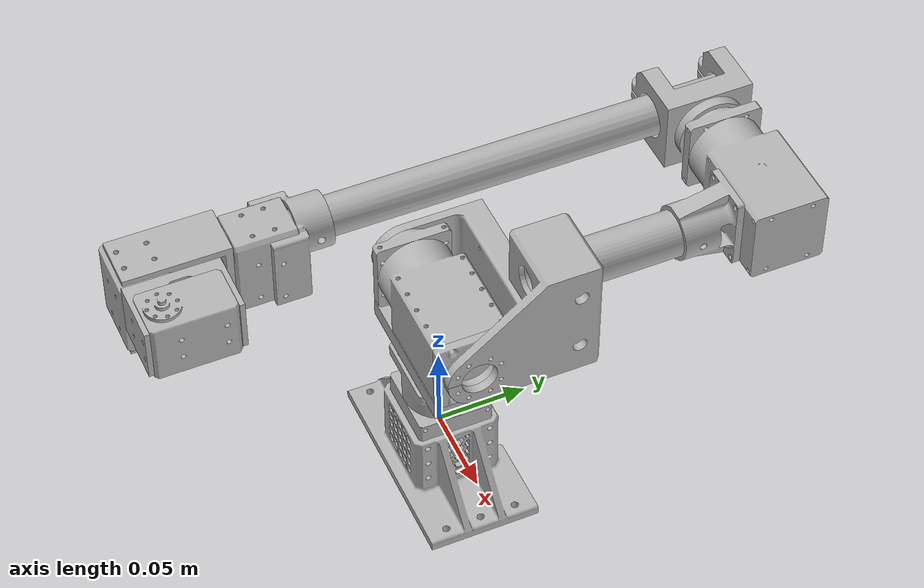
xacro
<?xml version="1.0" ?>
<robot name="ARM-4" xmlns:xacro="http://www.ros.org/wiki/xacro">

<xacro:include filename="$(find ARM-4_description)/urdf/materials.xacro" />
<xacro:include filename="$(find ARM-4_description)/urdf/ARM-4.trans" />
<xacro:include filename="$(find ARM-4_description)/urdf/ARM-4.gazebo" />
<link name="base_link">
  <inertial>
    <origin xyz="0.0004385753195550034 0.00024561670056185163 -0.018608109400743825" rpy="0 0 0"/>
    <mass value="0.051730597352499685"/>
    <inertia ixx="2.3e-05" iyy="6.7e-05" izz="7.5e-05" ixy="-1e-06" iyz="-0.0" ixz="0.0"/>
  </inertial>
  <visual>
    <origin xyz="0 0 0" rpy="0 0 0"/>
    <geometry>
      <mesh filename="package://ARM-4_description/meshes/base_link.stl" scale="0.001 0.001 0.001"/>
    </geometry>
    <material name="silver"/>
  </visual>
  <collision>
    <origin xyz="0 0 0" rpy="0 0 0"/>
    <geometry>
      <mesh filename="package://ARM-4_description/meshes/base_link.stl" scale="0.001 0.001 0.001"/>
    </geometry>
  </collision>
</link>

<link name="servo0_1">
  <inertial>
    <origin xyz="-0.02099999999999997 0.017999024648630707 -8.409504253751449e-05" rpy="0 0 0"/>
    <mass value="0.1328360191912904"/>
    <inertia ixx="8.9e-05" iyy="8.9e-05" izz="3.6e-05" ixy="0.0" iyz="0.0" ixz="-0.0"/>
  </inertial>
  <visual>
    <origin xyz="-0.02125 0.016996 -0.008557" rpy="0 0 0"/>
    <geometry>
      <mesh filename="package://ARM-4_description/meshes/servo0_1.stl" scale="0.001 0.001 0.001"/>
    </geometry>
    <material name="silver"/>
  </visual>
  <collision>
    <origin xyz="-0.02125 0.016996 -0.008557" rpy="0 0 0"/>
    <geometry>
      <mesh filename="package://ARM-4_description/meshes/servo0_1.stl" scale="0.001 0.001 0.001"/>
    </geometry>
  </collision>
</link>

<link name="link_1_1">
  <inertial>
    <origin xyz="0.00021346489717771446 -1.5104152642779652e-07 0.004921682705379571" rpy="0 0 0"/>
    <mass value="0.027574945987053033"/>
    <inertia ixx="5e-06" iyy="1.6e-05" izz="2.1e-05" ixy="-0.0" iyz="0.0" ixz="-0.0"/>
  </inertial>
  <visual>
    <origin xyz="-0.00025 -0.001004 -0.053557" rpy="0 0 0"/>
    <geometry>
      <mesh filename="package://ARM-4_description/meshes/link_1_1.stl" scale="0.001 0.001 0.001"/>
    </geometry>
    <material name="silver"/>
  </visual>
  <collision>
    <origin xyz="-0.00025 -0.001004 -0.053557" rpy="0 0 0"/>
    <geometry>
      <mesh filename="package://ARM-4_description/meshes/link_1_1.stl" scale="0.001 0.001 0.001"/>
    </geometry>
  </collision>
</link>

<link name="servo1_1">
  <inertial>
    <origin xyz="-0.035915993542907726 0.017999024648630596 0.020999911414554734" rpy="0 0 0"/>
    <mass value="0.1328360191912904"/>
    <inertia ixx="3.6e-05" iyy="8.9e-05" izz="8.9e-05" ixy="-0.0" iyz="0.0" ixz="-0.0"/>
  </inertial>
  <visual>
    <origin xyz="-0.03625 0.016996 -0.063557" rpy="0 0 0"/>
    <geometry>
      <mesh filename="package://ARM-4_description/meshes/servo1_1.stl" scale="0.001 0.001 0.001"/>
    </geometry>
    <material name="silver"/>
  </visual>
  <collision>
    <origin xyz="-0.03625 0.016996 -0.063557" rpy="0 0 0"/>
    <geometry>
      <mesh filename="package://ARM-4_description/meshes/servo1_1.stl" scale="0.001 0.001 0.001"/>
    </geometry>
  </collision>
</link>

<link name="mount_servo1_1">
  <inertial>
    <origin xyz="0.0024226147518589675 -4.049576875139998e-07 -8.858544373047117e-08" rpy="0 0 0"/>
    <mass value="0.006903794802292905"/>
    <inertia ixx="3e-06" iyy="1e-06" izz="1e-06" ixy="0.0" iyz="-0.0" ixz="0.0"/>
  </inertial>
  <visual>
    <origin xyz="-0.03925 -0.001004 -0.084557" rpy="0 0 0"/>
    <geometry>
      <mesh filename="package://ARM-4_description/meshes/mount_servo1_1.stl" scale="0.001 0.001 0.001"/>
    </geometry>
    <material name="silver"/>
  </visual>
  <collision>
    <origin xyz="-0.03925 -0.001004 -0.084557" rpy="0 0 0"/>
    <geometry>
      <mesh filename="package://ARM-4_description/meshes/mount_servo1_1.stl" scale="0.001 0.001 0.001"/>
    </geometry>
  </collision>
</link>

<link name="arm_servo1_1">
  <inertial>
    <origin xyz="0.06131753822649056 0.04230180290100319 0.011708092171080806" rpy="0 0 0"/>
    <mass value="0.03945353145434236"/>
    <inertia ixx="2.6e-05" iyy="5e-05" izz="4.5e-05" ixy="-5e-06" iyz="-3e-06" ixz="-6e-06"/>
  </inertial>
  <visual>
    <origin xyz="0.04475 -0.001004 -0.084557" rpy="0 0 0"/>
    <geometry>
      <mesh filename="package://ARM-4_description/meshes/arm_servo1_1.stl" scale="0.001 0.001 0.001"/>
    </geometry>
    <material name="silver"/>
  </visual>
  <collision>
    <origin xyz="0.04475 -0.001004 -0.084557" rpy="0 0 0"/>
    <geometry>
      <mesh filename="package://ARM-4_description/meshes/arm_servo1_1.stl" scale="0.001 0.001 0.001"/>
    </geometry>
  </collision>
</link>

<link name="link_2_1">
  <inertial>
    <origin xyz="-7.502351431071252e-09 0.049999898355988545 -1.3188173753064802e-07" rpy="0 0 0"/>
    <mass value="0.026187386328899307"/>
    <inertia ixx="2.3e-05" iyy="3e-06" izz="2.3e-05" ixy="0.0" iyz="0.0" ixz="-0.0"/>
  </inertial>
  <visual>
    <origin xyz="-0.02825 -0.039004 -0.119557" rpy="0 0 0"/>
    <geometry>
      <mesh filename="package://ARM-4_description/meshes/link_2_1.stl" scale="0.001 0.001 0.001"/>
    </geometry>
    <material name="silver"/>
  </visual>
  <collision>
    <origin xyz="-0.02825 -0.039004 -0.119557" rpy="0 0 0"/>
    <geometry>
      <mesh filename="package://ARM-4_description/meshes/link_2_1.stl" scale="0.001 0.001 0.001"/>
    </geometry>
  </collision>
</link>

<link name="mount_servo2_1">
  <inertial>
    <origin xyz="-0.0006985044842837511 0.0012845040444744993 -8.424119640748629e-08" rpy="0 0 0"/>
    <mass value="0.004854394657686725"/>
    <inertia ixx="1e-06" iyy="1e-06" izz="1e-06" ixy="0.0" iyz="0.0" ixz="-0.0"/>
  </inertial>
  <visual>
    <origin xyz="-0.02825 -0.139004 -0.119557" rpy="0 0 0"/>
    <geometry>
      <mesh filename="package://ARM-4_description/meshes/mount_servo2_1.stl" scale="0.001 0.001 0.001"/>
    </geometry>
    <material name="silver"/>
  </visual>
  <collision>
    <origin xyz="-0.02825 -0.139004 -0.119557" rpy="0 0 0"/>
    <geometry>
      <mesh filename="package://ARM-4_description/meshes/mount_servo2_1.stl" scale="0.001 0.001 0.001"/>
    </geometry>
  </collision>
</link>

<link name="servo2_1">
  <inertial>
    <origin xyz="-0.011915993542908492 0.02099984895860535 -9.128954189391303e-07" rpy="0 0 0"/>
    <mass value="0.1328360191912904"/>
    <inertia ixx="3.6e-05" iyy="8.9e-05" izz="8.9e-05" ixy="0.0" iyz="-0.0" ixz="-0.0"/>
  </inertial>
  <visual>
    <origin xyz="-0.02825 -0.151004 -0.119557" rpy="0 0 0"/>
    <geometry>
      <mesh filename="package://ARM-4_description/meshes/servo2_1.stl" scale="0.001 0.001 0.001"/>
    </geometry>
    <material name="silver"/>
  </visual>
  <collision>
    <origin xyz="-0.02825 -0.151004 -0.119557" rpy="0 0 0"/>
    <geometry>
      <mesh filename="package://ARM-4_description/meshes/servo2_1.stl" scale="0.001 0.001 0.001"/>
    </geometry>
  </collision>
</link>

<link name="arm_servo2_1">
  <inertial>
    <origin xyz="-0.016756703950992772 -0.0002234241895419653 -9.207900426855264e-08" rpy="0 0 0"/>
    <mass value="0.041354865805132895"/>
    <inertia ixx="1.7e-05" iyy="1.3e-05" izz="1.7e-05" ixy="-0.0" iyz="0.0" ixz="-0.0"/>
  </inertial>
  <visual>
    <origin xyz="0.02875 -0.172004 -0.119557" rpy="0 0 0"/>
    <geometry>
      <mesh filename="package://ARM-4_description/meshes/arm_servo2_1.stl" scale="0.001 0.001 0.001"/>
    </geometry>
    <material name="silver"/>
  </visual>
  <collision>
    <origin xyz="0.02875 -0.172004 -0.119557" rpy="0 0 0"/>
    <geometry>
      <mesh filename="package://ARM-4_description/meshes/arm_servo2_1.stl" scale="0.001 0.001 0.001"/>
    </geometry>
  </collision>
</link>

<link name="link_3_1">
  <inertial>
    <origin xyz="4.860870062711742e-08 -0.12732896460330156 -5.787852042082875e-08" rpy="0 0 0"/>
    <mass value="0.016728974550108872"/>
    <inertia ixx="9.1e-05" iyy="2e-06" izz="9.1e-05" ixy="-0.0" iyz="-0.0" ixz="0.0"/>
  </inertial>
  <visual>
    <origin xyz="0.05475 -0.197004 -0.119557" rpy="0 0 0"/>
    <geometry>
      <mesh filename="package://ARM-4_description/meshes/link_3_1.stl" scale="0.001 0.001 0.001"/>
    </geometry>
    <material name="silver"/>
  </visual>
  <collision>
    <origin xyz="0.05475 -0.197004 -0.119557" rpy="0 0 0"/>
    <geometry>
      <mesh filename="package://ARM-4_description/meshes/link_3_1.stl" scale="0.001 0.001 0.001"/>
    </geometry>
  </collision>
</link>

<link name="arm_servo3_1">
  <inertial>
    <origin xyz="0.000498804232449232 9.948047008820349e-05 -0.00920868744003421" rpy="0 0 0"/>
    <mass value="0.015226001475116177"/>
    <inertia ixx="4e-06" iyy="5e-06" izz="4e-06" ixy="0.0" iyz="-1e-06" ixz="0.0"/>
  </inertial>
  <visual>
    <origin xyz="0.05475 0.057607 -0.119557" rpy="0 0 0"/>
    <geometry>
      <mesh filename="package://ARM-4_description/meshes/arm_servo3_1.stl" scale="0.001 0.001 0.001"/>
    </geometry>
    <material name="silver"/>
  </visual>
  <collision>
    <origin xyz="0.05475 0.057607 -0.119557" rpy="0 0 0"/>
    <geometry>
      <mesh filename="package://ARM-4_description/meshes/arm_servo3_1.stl" scale="0.001 0.001 0.001"/>
    </geometry>
  </collision>
</link>

<link name="servo3_1">
  <inertial>
    <origin xyz="-0.014249998045604916 -0.006108251487453101 0.016148109386720358" rpy="0 0 0"/>
    <mass value="0.3418188175764502"/>
    <inertia ixx="9.6e-05" iyy="8.3e-05" izz="5.8e-05" ixy="0.0" iyz="0.0" ixz="-0.0"/>
  </inertial>
  <visual>
    <origin xyz="0.0404 0.069639 -0.091557" rpy="0 0 0"/>
    <geometry>
      <mesh filename="package://ARM-4_description/meshes/servo3_1.stl" scale="0.001 0.001 0.001"/>
    </geometry>
    <material name="silver"/>
  </visual>
  <collision>
    <origin xyz="0.0404 0.069639 -0.091557" rpy="0 0 0"/>
    <geometry>
      <mesh filename="package://ARM-4_description/meshes/servo3_1.stl" scale="0.001 0.001 0.001"/>
    </geometry>
  </collision>
</link>

<link name="link_4_1">
  <inertial>
    <origin xyz="-1.6237011735142914e-15 -0.02458575467624917 -0.00654149143996427" rpy="0 0 0"/>
    <mass value="0.018894166854598087"/>
    <inertia ixx="1.1e-05" iyy="8e-06" izz="6e-06" ixy="-0.0" iyz="-2e-06" ixz="0.0"/>
  </inertial>
  <visual>
    <origin xyz="0.05465 0.094639 -0.119557" rpy="0 0 0"/>
    <geometry>
      <mesh filename="package://ARM-4_description/meshes/link_4_1.stl" scale="0.001 0.001 0.001"/>
    </geometry>
    <material name="silver"/>
  </visual>
  <collision>
    <origin xyz="0.05465 0.094639 -0.119557" rpy="0 0 0"/>
    <geometry>
      <mesh filename="package://ARM-4_description/meshes/link_4_1.stl" scale="0.001 0.001 0.001"/>
    </geometry>
  </collision>
</link>

<link name="servo4_1">
  <inertial>
    <origin xyz="-0.005891311306206945 0.008000439160683909 -0.02310189061335706" rpy="0 0 0"/>
    <mass value="0.34181881757645044"/>
    <inertia ixx="8.3e-05" iyy="9.6e-05" izz="5.8e-05" ixy="-0.0" iyz="-0.0" ixz="-0.0"/>
  </inertial>
  <visual>
    <origin xyz="0.04865 0.149089 -0.131307" rpy="0 0 0"/>
    <geometry>
      <mesh filename="package://ARM-4_description/meshes/servo4_1.stl" scale="0.001 0.001 0.001"/>
    </geometry>
    <material name="silver"/>
  </visual>
  <collision>
    <origin xyz="0.04865 0.149089 -0.131307" rpy="0 0 0"/>
    <geometry>
      <mesh filename="package://ARM-4_description/meshes/servo4_1.stl" scale="0.001 0.001 0.001"/>
    </geometry>
  </collision>
</link>

<link name="link_5_1">
  <inertial>
    <origin xyz="0.008763710608043374 0.012528054164850894 -8.858555375357291e-08" rpy="0 0 0"/>
    <mass value="0.005474227941948715"/>
    <inertia ixx="2e-06" iyy="1e-06" izz="2e-06" ixy="0.0" iyz="0.0" ixz="0.0"/>
  </inertial>
  <visual>
    <origin xyz="0.03565 0.141089 -0.120057" rpy="0 0 0"/>
    <geometry>
      <mesh filename="package://ARM-4_description/meshes/link_5_1.stl" scale="0.001 0.001 0.001"/>
    </geometry>
    <material name="silver"/>
  </visual>
  <collision>
    <origin xyz="0.03565 0.141089 -0.120057" rpy="0 0 0"/>
    <geometry>
      <mesh filename="package://ARM-4_description/meshes/link_5_1.stl" scale="0.001 0.001 0.001"/>
    </geometry>
  </collision>
</link>

<link name="servo5_1">
  <inertial>
    <origin xyz="-0.008000001954397548 0.02310223923412985 -0.005891399891756549" rpy="0 0 0"/>
    <mass value="0.34181881757645044"/>
    <inertia ixx="9.6e-05" iyy="5.8e-05" izz="8.3e-05" ixy="-0.0" iyz="0.0" ixz="0.0"/>
  </inertial>
  <visual>
    <origin xyz="0.0052 0.152539 -0.126057" rpy="0 0 0"/>
    <geometry>
      <mesh filename="package://ARM-4_description/meshes/servo5_1.stl" scale="0.001 0.001 0.001"/>
    </geometry>
    <material name="silver"/>
  </visual>
  <collision>
    <origin xyz="0.0052 0.152539 -0.126057" rpy="0 0 0"/>
    <geometry>
      <mesh filename="package://ARM-4_description/meshes/servo5_1.stl" scale="0.001 0.001 0.001"/>
    </geometry>
  </collision>
</link>

<joint name="Rigid3" type="fixed">
  <origin xyz="0.02125 -0.016996 0.008557" rpy="0 0 0"/>
  <parent link="base_link"/>
  <child link="servo0_1"/>
</joint>

<joint name="Rev4" type="revolute">
  <origin xyz="-0.021 0.018 0.045" rpy="0 0 0"/>
  <parent link="servo0_1"/>
  <child link="link_1_1"/>
  <axis xyz="0.0 -0.0 1.0"/>
  <limit upper="1.570796" lower="-1.570796" effort="100" velocity="100"/>
</joint>

<joint name="Rigid5" type="fixed">
  <origin xyz="0.036 -0.018 0.01" rpy="0 0 0"/>
  <parent link="link_1_1"/>
  <child link="servo1_1"/>
</joint>

<joint name="Rigid6" type="fixed">
  <origin xyz="0.003 0.018 0.021" rpy="0 0 0"/>
  <parent link="servo1_1"/>
  <child link="mount_servo1_1"/>
</joint>

<joint name="Rev7" type="revolute">
  <origin xyz="-0.081 0.018 0.021" rpy="0 0 0"/>
  <parent link="servo1_1"/>
  <child link="arm_servo1_1"/>
  <axis xyz="-1.0 -0.0 -0.0"/>
  <limit upper="0.0" lower="-3.141593" effort="100" velocity="100"/>
</joint>

<joint name="Rigid8" type="fixed">
  <origin xyz="0.073 0.038 0.035" rpy="0 0 0"/>
  <parent link="arm_servo1_1"/>
  <child link="link_2_1"/>
</joint>

<joint name="Rigid9" type="fixed">
  <origin xyz="0.0 0.1 0.0" rpy="0 0 0"/>
  <parent link="link_2_1"/>
  <child link="mount_servo2_1"/>
</joint>

<joint name="Rigid10" type="fixed">
  <origin xyz="0.0 0.012 0.0" rpy="0 0 0"/>
  <parent link="mount_servo2_1"/>
  <child link="servo2_1"/>
</joint>

<joint name="Rev11" type="revolute">
  <origin xyz="-0.057 0.021 0.0" rpy="0 0 0"/>
  <parent link="servo2_1"/>
  <child link="arm_servo2_1"/>
  <axis xyz="-1.0 -0.0 -0.0"/>
  <limit upper="1.570796" lower="-1.570796" effort="100" velocity="100"/>
</joint>

<joint name="Rigid12" type="fixed">
  <origin xyz="-0.026 0.025 0.0" rpy="0 0 0"/>
  <parent link="arm_servo2_1"/>
  <child link="link_3_1"/>
</joint>

<joint name="Rigid13" type="fixed">
  <origin xyz="0.0 -0.254611 0.0" rpy="0 0 0"/>
  <parent link="link_3_1"/>
  <child link="arm_servo3_1"/>
</joint>

<joint name="Rigid23" type="fixed">
  <origin xyz="0.01435 -0.012032 -0.028" rpy="0 0 0"/>
  <parent link="arm_servo3_1"/>
  <child link="servo3_1"/>
</joint>

<joint name="Rev27" type="revolute">
  <origin xyz="-0.01425 -0.025 0.028" rpy="0 0 0"/>
  <parent link="servo3_1"/>
  <child link="link_4_1"/>
  <axis xyz="-0.0 1.0 0.0"/>
  <limit upper="3.141593" lower="0.0" effort="100" velocity="100"/>
</joint>

<joint name="Rigid28" type="fixed">
  <origin xyz="0.006 -0.05445 0.01175" rpy="0 0 0"/>
  <parent link="link_4_1"/>
  <child link="servo4_1"/>
</joint>

<joint name="Rev29" type="revolute">
  <origin xyz="0.013 0.008 -0.01125" rpy="0 0 0"/>
  <parent link="servo4_1"/>
  <child link="link_5_1"/>
  <axis xyz="-1.0 -0.0 0.0"/>
  <limit upper="0.0" lower="-1.570796" effort="100" velocity="100"/>
</joint>

<joint name="Rigid30" type="fixed">
  <origin xyz="0.03045 -0.01145 0.006" rpy="0 0 0"/>
  <parent link="link_5_1"/>
  <child link="servo5_1"/>
</joint>

</robot>

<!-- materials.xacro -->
<robot name="ARM-4" xmlns:xacro="http://www.ros.org/wiki/xacro" >

<material name="silver">
  <color rgba="0.700 0.700 0.700 1.000"/>
</material>

</robot>

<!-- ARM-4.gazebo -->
<robot name="ARM-4" xmlns:xacro="http://www.ros.org/wiki/xacro" >

<xacro:property name="body_color" value="Gazebo/Silver" />

<gazebo>
  <plugin name="control" filename="libgazebo_ros_control.so"/>
</gazebo>
<gazebo reference="base_link">
  <material>${body_color}</material>
  <mu1>0.2</mu1>
  <mu2>0.2</mu2>
  <selfCollide>true</selfCollide>
  <gravity>true</gravity>
</gazebo>

<gazebo reference="servo0_1">
  <material>${body_color}</material>
  <mu1>0.2</mu1>
  <mu2>0.2</mu2>
  <selfCollide>true</selfCollide>
</gazebo>

<gazebo reference="link_1_1">
  <material>${body_color}</material>
  <mu1>0.2</mu1>
  <mu2>0.2</mu2>
  <selfCollide>true</selfCollide>
</gazebo>

<gazebo reference="servo1_1">
  <material>${body_color}</material>
  <mu1>0.2</mu1>
  <mu2>0.2</mu2>
  <selfCollide>true</selfCollide>
</gazebo>

<gazebo reference="mount_servo1_1">
  <material>${body_color}</material>
  <mu1>0.2</mu1>
  <mu2>0.2</mu2>
  <selfCollide>true</selfCollide>
</gazebo>

<gazebo reference="arm_servo1_1">
  <material>${body_color}</material>
  <mu1>0.2</mu1>
  <mu2>0.2</mu2>
  <selfCollide>true</selfCollide>
</gazebo>

<gazebo reference="link_2_1">
  <material>${body_color}</material>
  <mu1>0.2</mu1>
  <mu2>0.2</mu2>
  <selfCollide>true</selfCollide>
</gazebo>

<gazebo reference="mount_servo2_1">
  <material>${body_color}</material>
  <mu1>0.2</mu1>
  <mu2>0.2</mu2>
  <selfCollide>true</selfCollide>
</gazebo>

<gazebo reference="servo2_1">
  <material>${body_color}</material>
  <mu1>0.2</mu1>
  <mu2>0.2</mu2>
  <selfCollide>true</selfCollide>
</gazebo>

<gazebo reference="arm_servo2_1">
  <material>${body_color}</material>
  <mu1>0.2</mu1>
  <mu2>0.2</mu2>
  <selfCollide>true</selfCollide>
</gazebo>

<gazebo reference="link_3_1">
  <material>${body_color}</material>
  <mu1>0.2</mu1>
  <mu2>0.2</mu2>
  <selfCollide>true</selfCollide>
</gazebo>

<gazebo reference="arm_servo3_1">
  <material>${body_color}</material>
  <mu1>0.2</mu1>
  <mu2>0.2</mu2>
  <selfCollide>true</selfCollide>
</gazebo>

<gazebo reference="servo3_1">
  <material>${body_color}</material>
  <mu1>0.2</mu1>
  <mu2>0.2</mu2>
  <selfCollide>true</selfCollide>
</gazebo>

<gazebo reference="link_4_1">
  <material>${body_color}</material>
  <mu1>0.2</mu1>
  <mu2>0.2</mu2>
  <selfCollide>true</selfCollide>
</gazebo>

<gazebo reference="servo4_1">
  <material>${body_color}</material>
  <mu1>0.2</mu1>
  <mu2>0.2</mu2>
  <selfCollide>true</selfCollide>
</gazebo>

<gazebo reference="link_5_1">
  <material>${body_color}</material>
  <mu1>0.2</mu1>
  <mu2>0.2</mu2>
  <selfCollide>true</selfCollide>
</gazebo>

<gazebo reference="servo5_1">
  <material>${body_color}</material>
  <mu1>0.2</mu1>
  <mu2>0.2</mu2>
  <selfCollide>true</selfCollide>
</gazebo>

</robot>
